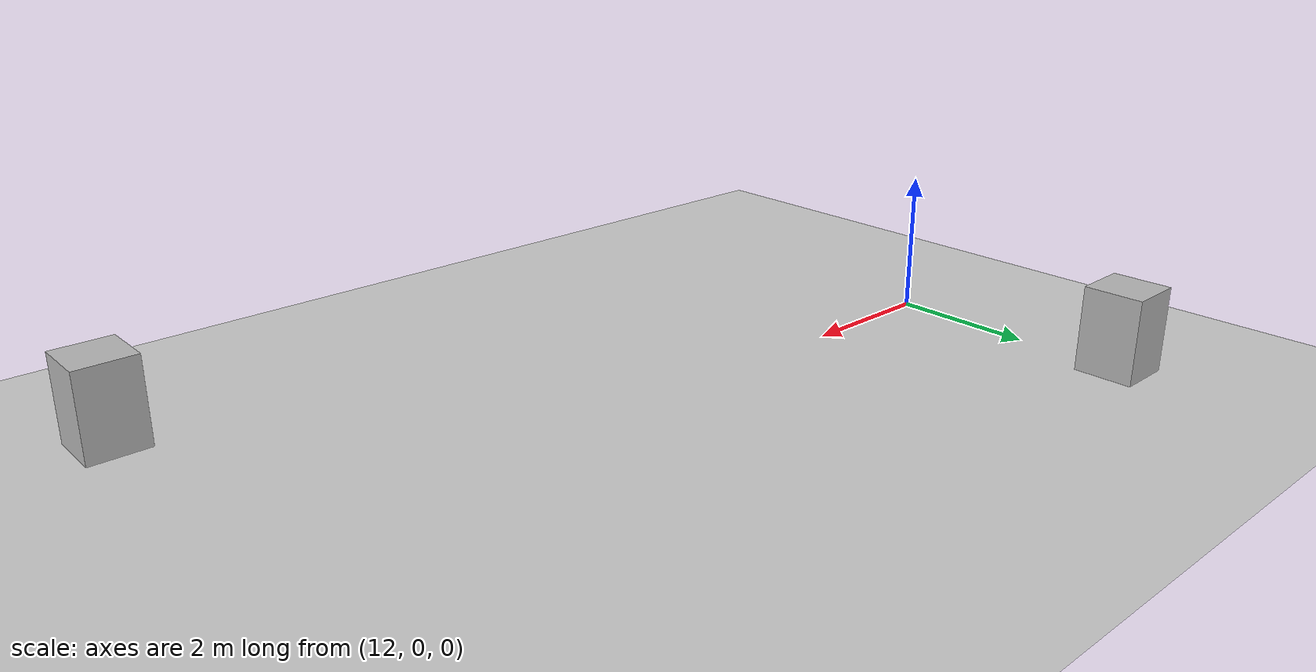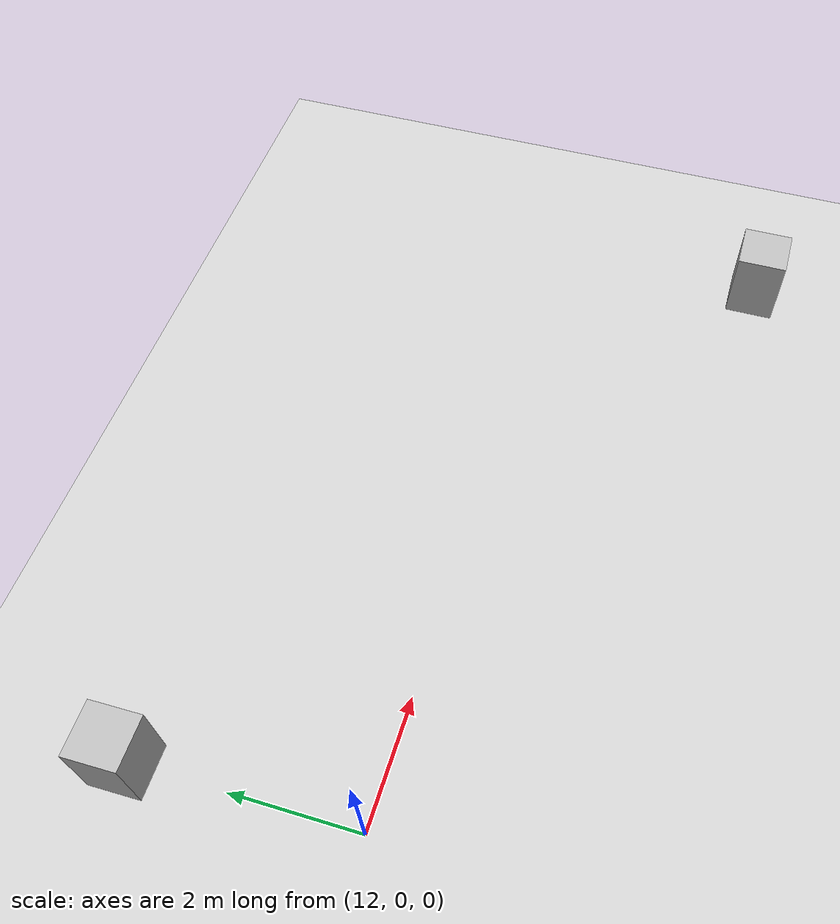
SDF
<?xml version="1.0"?>
<sdf version="1.6">
  <world name="v2-04g-cruise-s4901">
    <gravity>0 0 -9.81</gravity>
    <physics name="v2_deterministic" type="ode">
      <max_step_size>0.002</max_step_size>
      <real_time_update_rate>500</real_time_update_rate>
    </physics>
    <include>
      <uri>model://sun</uri>
    </include>
    <include>
      <uri>model://ground_plane</uri>
    </include>
    <model name="cruise-left">
      <static>true</static>
      <pose>11.975334905 3.471844426 0.600000000 0 0 0.008497589</pose>
      <link name="link">
        <collision name="collision">
          <geometry>
            <box>
              <size>0.800000 0.800000 1.200000</size>
            </box>
          </geometry>
        </collision>
        <visual name="visual">
          <geometry>
            <box>
              <size>0.800000 0.800000 1.200000</size>
            </box>
          </geometry>
        </visual>
      </link>
    </model>
    <model name="cruise-right">
      <static>true</static>
      <pose>22.961753256 -3.491286553 0.600000000 0 0 0.000075425</pose>
      <link name="link">
        <collision name="collision">
          <geometry>
            <box>
              <size>0.800000 0.800000 1.200000</size>
            </box>
          </geometry>
        </collision>
        <visual name="visual">
          <geometry>
            <box>
              <size>0.800000 0.800000 1.200000</size>
            </box>
          </geometry>
        </visual>
      </link>
    </model>
  </world>
</sdf>
